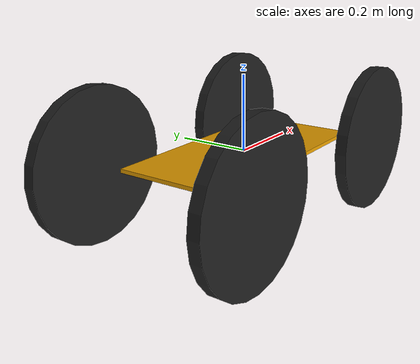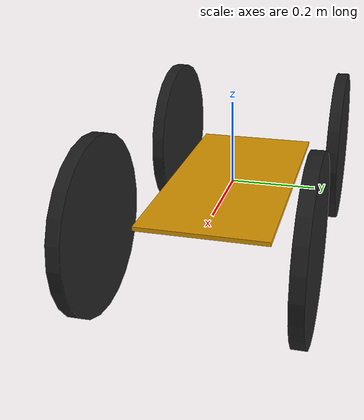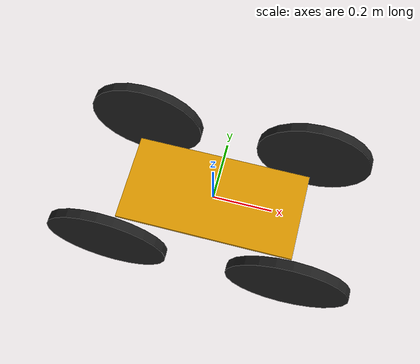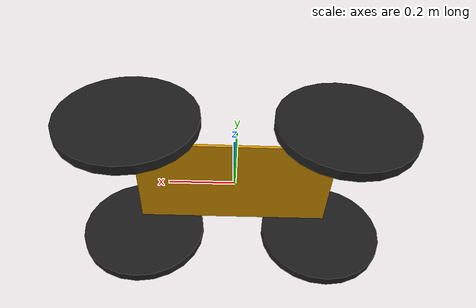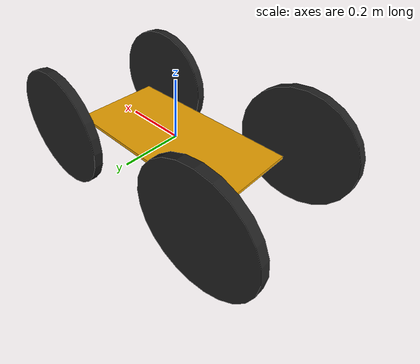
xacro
<?xml version="1.0"?>
<robot name="kangaroo_diff_drive" xmlns:xacro="http://www.ros.org/wiki/xacro">
  <!-- Constants for robot dimensions -->
  <xacro:property name="PI" value="3.1415926535897931"/>
  <xacro:property name = "chassis_width" value = "0.3"/>
  <xacro:property name = "axle_width" value = "0.46"/>
  <xacro:property name = "length" value = "0.6"/>
  <xacro:property name = "wheel_t" value = "0.03"/>
  <xacro:property name = "wheel_r" value = "0.2"/>

  <!-- Base Link -->
  <link name="base_link">
     <visual>
          <geometry>
               <box size="${length} ${chassis_width} 0.01"/>
          </geometry>
     </visual>
   </link>

   <xacro:macro name = "wheel" params = "prefix reflect_lr reflect_fr">
        <link name = "${prefix}_wheel">
             <collision name="collision">
               <origin xyz="0 0.0 0" rpy="0 1.5707 1.5707"/>
               <geometry>
                  <cylinder  length="${wheel_t}" radius="${wheel_r}"/>
               </geometry>
             </collision>
             <visual name="visual">
               <origin xyz="0 0.0 0" rpy="0 1.5707 1.5707"/>
               <geometry>
                 <cylinder  length="${wheel_t}" radius="${wheel_r}"/>
               </geometry>
               <material name="black"/>
             </visual>
           </link>

           <joint type="revolute" name="${prefix}_motor_joint">
             <origin xyz="${reflect_fr*length/2} ${reflect_lr*axle_width/2} 0" rpy="0 0 0"/>
             <child link="${prefix}_wheel"/>
             <parent link="base_link"/>
             <axis xyz="0 1 0"/>
             <limit effort="100" velocity="100.0"  lower="-5000" upper="5000" />
           </joint>

      </xacro:macro>
      <xacro:wheel prefix = "front_left" reflect_lr = "-1" reflect_fr = "1"/>
      <xacro:wheel prefix = "front_right" reflect_lr = "1" reflect_fr = "1"/>
      <xacro:wheel prefix = "rear_left" reflect_lr = "-1" reflect_fr = "-1"/>
      <xacro:wheel prefix = "rear_right" reflect_lr = "1" reflect_fr = "-1"/>

</robot>
